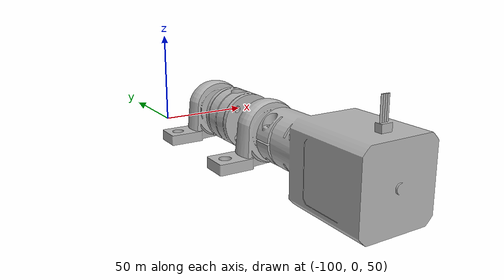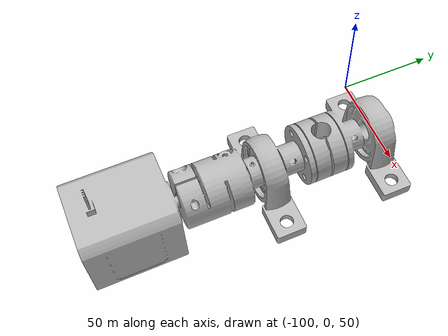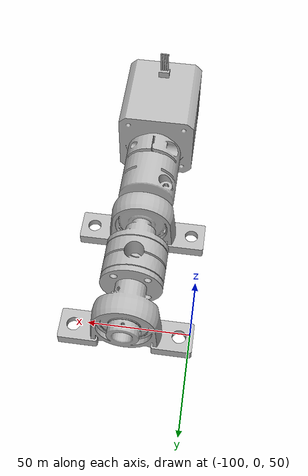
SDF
<?xml version="1.0"?>

<sdf version="1.9">
    <world name="world2">

        <include>
            <uri>model://motor</uri>
            <name>motor</name>
            <pose>0 0 0 0 0 0</pose>
        </include>

    </world>
</sdf>

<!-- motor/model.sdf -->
<sdf version="1.9">

    <model name="motor">

        <static>true</static>

        <link name="motor_link">

            <visual name="motor_visual">

                <geometry>
                    <mesh>
                        <uri>meshes/Traumfaenger_EXPORT_motor.obj</uri>
                        <scale>1 1 1</scale>
                    </mesh>
                </geometry>

            </visual>

        </link>

    </model>

</sdf>
